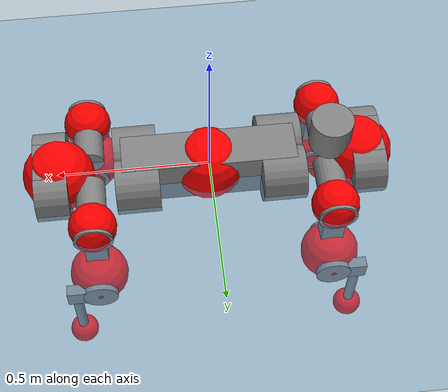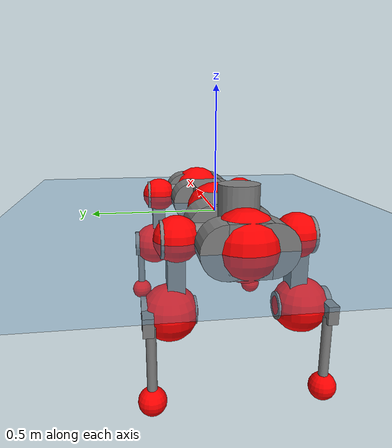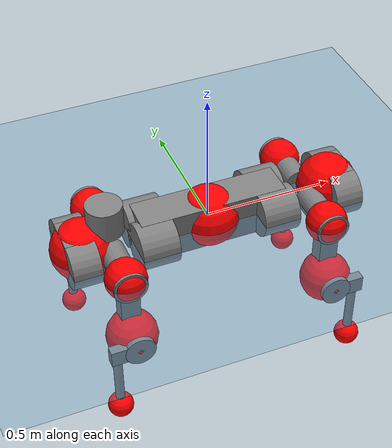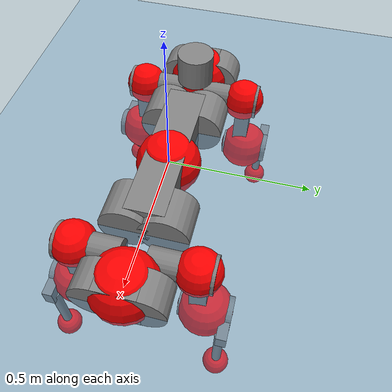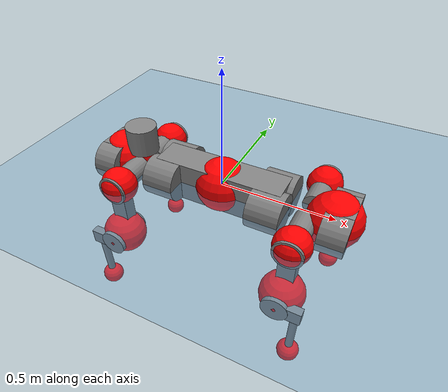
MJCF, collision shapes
<mujoco model="anymal_c">
  <compiler angle="radian" assetdir="assets" balanceinertia="true" inertiafromgeom="false"/>

  <option timestep="0.005" density="1.2" viscosity="2e-05"/>

  <size nkey="1"/>

  <visual>
    <quality shadowsize="8192"/>
    <map shadowclip="0.5"/>
  </visual>

  <default>
    <default class="/">
      <material specular="0" shininess="0.25"/>
      <geom contype="0" conaffinity="0" group="1" solref="-1000 -80"/>
      <site size="0.01 0.005 0.005" group="5"/>
      <general forcelimited="true" forcerange="-80 80" biastype="affine" gainprm="80" biasprm="0 -80 -2"/>
      <default class="anymal_c">
        <joint armature="0.01" damping="0.01" frictionloss="0.1"/>
        <default class="visual">
          <geom type="mesh" group="2"/>
          <default class="visual_zflip"/>
        </default>
        <default class="collision">
          <geom type="cylinder" group="3"/>
          <default class="foot">
            <geom size="0.03 0 0" type="sphere" condim="6" priority="1" friction="0.8 0.02 0.01" solimp="0.015 1 0.03"/>
          </default>
        </default>
      </default>
      <default class="reward_collision_sphere">
        <geom group="5" rgba="1 0 0 1"/>
      </default>
    </default>
  </default>

  <asset>
    <texture type="skybox" colorspace="auto" name="//unnamed_texture_0" builtin="gradient" rgb1="0.95 0.95 0.95" rgb2="0.95 0.95 0.95" width="100" height="600"/>
    <texture type="2d" colorspace="auto" name="texplane" builtin="checker" rgb1="0.345 0.575 0.748" rgb2="0.345 0.575 0.748" markrgb="1 1 1" width="512" height="512"/>
    <texture type="2d" colorspace="linear" name="base" file="base.png"/>
    <texture type="2d" colorspace="linear" name="top_shell" file="top_shell.png"/>
    <texture type="2d" colorspace="linear" name="bottom_shell" file="bottom_shell.png"/>
    <texture type="2d" colorspace="linear" name="remote" file="remote.png"/>
    <texture type="2d" colorspace="linear" name="hatch" file="hatch.png"/>
    <texture type="2d" colorspace="linear" name="handle" file="handle.png"/>
    <texture type="2d" colorspace="linear" name="face" file="face.png"/>
    <texture type="2d" colorspace="linear" name="battery" file="battery.png"/>
    <texture type="2d" colorspace="linear" name="lidar_cage" file="lidar_cage.png"/>
    <texture type="2d" colorspace="linear" name="depth_camera" file="depth_camera.png"/>
    <texture type="2d" colorspace="linear" name="wide_angle_camera" file="wide_angle_camera.png"/>
    <texture type="2d" colorspace="linear" name="lidar" file="lidar.png"/>
    <texture type="2d" colorspace="linear" name="drive" file="drive.png"/>
    <texture type="2d" colorspace="linear" name="hip_l" file="hip_l.png"/>
    <texture type="2d" colorspace="linear" name="shank_l" file="shank_l.png"/>
    <texture type="2d" colorspace="linear" name="foot" file="foot.png"/>
    <texture type="2d" colorspace="linear" name="thigh" file="thigh.png"/>
    <texture type="2d" colorspace="linear" name="shank_r" file="shank_r.png"/>
    <texture type="2d" colorspace="linear" name="hip_r" file="hip_r.png"/>
    <material name="MatPlane" class="/" texture="texplane" texuniform="true" texrepeat="2 2" specular="0.9" shininess="0.5"/>
    <material name="black_plastic" class="/" rgba="0.007 0.007 0.007 1"/>
    <material name="green" class="/" rgba="0.052 0.178 0.033 1"/>
    <material name="red" class="/" rgba="0.178 0.006 0.005 1"/>
    <material name="yellow" class="/" rgba="0.178 0.119 0.006 1"/>
    <material name="lwl" class="/" rgba="0.8 0.8 0.8 1"/>
    <material name="base" class="/" texture="base"/>
    <material name="top_shell" class="/" texture="top_shell"/>
    <material name="bottom_shell" class="/" texture="bottom_shell"/>
    <material name="hip_l" class="/" texture="hip_l"/>
    <material name="thigh" class="/" texture="thigh"/>
    <material name="shank_l" class="/" texture="shank_l"/>
    <material name="foot" class="/" texture="foot"/>
    <material name="hip_r" class="/" texture="hip_r"/>
    <material name="shank" class="/" texture="shank_r"/>
    <material name="hatch" class="/" texture="hatch"/>
    <material name="remote" class="/" texture="remote"/>
    <material name="handle" class="/" texture="handle"/>
    <material name="face" class="/" texture="face"/>
    <material name="depth_camera" class="/" texture="depth_camera"/>
    <material name="wide_angle_camera" class="/" texture="wide_angle_camera"/>
    <material name="battery" class="/" texture="battery"/>
    <material name="lidar_cage" class="/" texture="lidar_cage"/>
    <material name="lidar" class="/" texture="lidar"/>
    <material name="drive" class="/" texture="drive"/>
    <mesh name="base_0" class="/" file="base_0.obj"/>
    <mesh name="base_1" class="/" file="base_1.obj"/>
    <mesh name="base_2" class="/" file="base_2.obj"/>
    <mesh name="base_3" class="/" file="base_3.obj"/>
    <mesh name="base_4" class="/" file="base_4.obj"/>
    <mesh name="base_5" class="/" file="base_5.obj"/>
    <mesh name="top_shell" class="/" file="top_shell.obj"/>
    <mesh name="bottom_shell" class="/" file="bottom_shell.obj"/>
    <mesh name="remote" class="/" file="remote.obj"/>
    <mesh name="handle" class="/" file="handle.obj"/>
    <mesh name="face" class="/" file="face.obj"/>
    <mesh name="wide_angle_camera" class="/" file="wide_angle_camera.obj"/>
    <mesh name="depth_camera" class="/" file="depth_camera.obj"/>
    <mesh name="battery" class="/" file="battery.obj"/>
    <mesh name="lidar_cage" class="/" file="lidar_cage.obj"/>
    <mesh name="lidar" class="/" file="lidar.obj"/>
    <mesh name="drive" class="/" file="drive.obj"/>
    <mesh name="hip_l" class="/" file="hip_l.obj"/>
    <mesh name="thigh" class="/" file="thigh.obj"/>
    <mesh name="shank_l" class="/" file="shank_l.obj"/>
    <mesh name="foot" class="/" file="foot.obj"/>
    <mesh name="hip_r" class="/" file="hip_r.obj"/>
    <mesh name="hatch" class="/" file="hatch.obj"/>
    <mesh name="shank_r" class="/" file="shank_r.obj"/>
  </asset>

  <worldbody>
    <geom name="floor" class="/" size="100 100 0.125" type="plane" group="0" material="MatPlane"/>
    <light name="toplight_shadow" class="/" pos="0 0 5" dir="0.0990148 0.0990148 -0.990148" type="directional" ambient="0.04 0.04 0.04" diffuse="0.55 0.55 0.55" specular="0.12 0.12 0.12"/>
    <light name="toplight_fill" class="/" pos="0 0 5" dir="0.0990148 0.0990148 -0.990148" type="directional" castshadow="false" ambient="0.04 0.04 0.04" diffuse="0.3 0.3 0.3" specular="0.08 0.08 0.08"/>
    <body name="trunk" childclass="anymal_c" pos="0.0026975 -0.000297181 -0.000275215" quat="1 0.00051215 0.000144751 5.15707e-05">
      <inertial pos="0.00269598 0.000836518 0.0433175" quat="0.497975 0.499471 0.499239 0.503299" mass="17.8538" diaginertia="1.06841 0.50054 0.121719"/>
      <joint name="//unnamed_joint_0" type="free" armature="0" damping="0" frictionloss="0"/>
      <geom name="//unnamed_geom_1" class="visual" material="green" mesh="base_0"/>
      <geom name="//unnamed_geom_2" class="visual" material="yellow" mesh="base_1"/>
      <geom name="//unnamed_geom_3" class="visual" material="red" mesh="base_2"/>
      <geom name="//unnamed_geom_4" class="visual" material="black_plastic" mesh="base_3"/>
      <geom name="//unnamed_geom_5" class="visual" material="lwl" mesh="base_4"/>
      <geom name="//unnamed_geom_6" class="visual" material="base" mesh="base_5"/>
      <geom name="trunk_1" class="collision" size="0.28363 0.0684625 0.0880232" type="box"/>
      <geom name="trunk_2" class="collision" size="0.0880232 0.0709076" pos="0.238007 0.0664248 0" quat="0.707107 0 0.707107 0"/>
      <geom name="trunk_3" class="collision" size="0.0880232 0.0709076" pos="-0.238007 0.0664248 0" quat="0.707107 0 0.707107 0"/>
      <geom name="trunk_4" class="collision" size="0.0880232 0.0709076" pos="0.238007 -0.0664248 0" quat="0.707107 0 0.707107 0"/>
      <geom name="trunk_5" class="collision" size="0.0880232 0.0709076" pos="-0.238007 -0.0664248 0" quat="0.707107 0 0.707107 0"/>
      <geom name="//unnamed_geom_12" class="visual" material="top_shell" mesh="top_shell"/>
      <geom name="//unnamed_geom_13" class="visual" material="bottom_shell" mesh="bottom_shell"/>
      <geom name="//unnamed_geom_14" class="visual" material="remote" mesh="remote"/>
      <geom name="//unnamed_geom_15" class="visual" material="handle" mesh="handle"/>
      <geom name="//unnamed_geom_16" class="visual" pos="0.453582 0 0" quat="1 0 0 0" material="face" mesh="face"/>
      <geom name="trunk_6" class="collision" size="0.0537919 0.0684625 0.0880232" pos="0.513768 0 0" type="box"/>
      <geom name="//unnamed_geom_18" class="collision" size="0.0880232 0.0537919" pos="0.513768 0.0664248 0" quat="0.707107 0 0.707107 0"/>
      <geom name="//unnamed_geom_19" class="collision" size="0.0880232 0.0537919" pos="0.513768 -0.0664248 0" quat="0.707107 0 0.707107 0"/>
      <geom name="//unnamed_geom_20" class="visual" pos="0.505169 0 -0.0244683" quat="0.965926 0 0.258819 0" material="depth_camera" mesh="depth_camera"/>
      <geom name="//unnamed_geom_21" class="visual" pos="0.561369 0 0.0133367" material="wide_angle_camera" mesh="wide_angle_camera"/>
      <geom name="//unnamed_geom_22" class="visual_zflip" pos="-0.453582 0 0" quat="0 0 0 1" material="face" mesh="face"/>
      <geom name="trunk_7" class="collision" size="0.0537919 0.0684625 0.0880232" pos="-0.513768 0 0" quat="0 0 0 1" type="box"/>
      <geom name="//unnamed_geom_24" class="collision" size="0.0880232 0.0537919" pos="-0.513768 -0.0664248 0" quat="0 -0.707107 0 0.707107"/>
      <geom name="//unnamed_geom_25" class="collision" size="0.0880232 0.0537919" pos="-0.513768 0.0664248 0" quat="0 -0.707107 0 0.707107"/>
      <geom name="//unnamed_geom_26" class="visual" pos="-0.505169 0 -0.0244683" quat="0 -0.258819 0 0.965926" material="depth_camera" mesh="depth_camera"/>
      <geom name="//unnamed_geom_27" class="visual_zflip" pos="-0.561369 0 0.0133367" quat="0 0 0 1" material="wide_angle_camera" mesh="wide_angle_camera"/>
      <geom name="//unnamed_geom_28" class="visual" material="battery" mesh="battery"/>
      <geom name="//unnamed_geom_29" class="visual" pos="0 0.0706389 0.0274263" quat="0.683013 -0.183013 0.183013 0.683013" material="depth_camera" mesh="depth_camera"/>
      <geom name="//unnamed_geom_30" class="visual" pos="0 -0.0706389 0.0274263" quat="0.683013 0.183013 0.183013 -0.683013" material="depth_camera" mesh="depth_camera"/>
      <geom name="//unnamed_geom_31" class="visual" pos="-0.39832 0 0.0654807" quat="1 0 0 0" material="lidar_cage" mesh="lidar_cage"/>
      <geom name="trunk_8" class="collision" size="0.0684625 0.0586821" pos="-0.39832 0 0.118934"/>
      <geom name="//unnamed_geom_33" class="visual" pos="-0.39832 -5.71087e-05 0.126685" quat="0.707107 0 0 -0.707107" material="lidar" mesh="lidar"/>
      <geom name="//unnamed_geom_34" class="visual" pos="0.328177 0.0986676 1.00103e-09" quat="0.258819 0.965926 0 0" material="drive" mesh="drive"/>
      <geom name="//unnamed_geom_35" class="visual" pos="0.328177 -0.0986676 -1.00103e-09" quat="0.258819 -0.965926 0 0" material="drive" mesh="drive"/>
      <geom name="//unnamed_geom_36" class="visual" pos="-0.328177 0.0986676 -1.00103e-09" quat="0 0 0.965926 -0.258819" material="drive" mesh="drive"/>
      <geom name="//unnamed_geom_37" class="visual" pos="-0.328177 -0.0986676 1.00103e-09" quat="0 0 -0.965926 -0.258819" material="drive" mesh="drive"/>
      <geom name="//unnamed_geom_38" class="visual" pos="0.126937 0 0.0650353" quat="1 0 0 0" material="hatch" mesh="hatch"/>
      <geom name="//unnamed_geom_39" class="reward_collision_sphere" size="0.117364"/>
      <geom name="//unnamed_geom_40" class="reward_collision_sphere" size="0.117364" pos="0.492429 0 0"/>
      <geom name="//unnamed_geom_41" class="reward_collision_sphere" size="0.117364" pos="-0.492429 0 0"/>
      <site name="imu" pos="0.267261 0.010857 0.0276748" size="0.00978035"/>
      <camera name="track" pos="0 -1.89785 0" quat="0.707107 0.707107 0 0" mode="trackcom"/>
      <camera name="ego_camera" pos="0.492429 0 -0.0356358" quat="-0.5 -0.5 0.5 0.5"/>
      <body name="LF_HIP" pos="0.327671 0.0992402 -0.00104103" quat="0.257658 0.966236 0.000204923 0.000201792">
        <inertial pos="0.0593247 -0.0139255 -0.0071646" quat="-0.126761 0.710666 -0.135299 0.67866" mass="2.61765" diaginertia="0.0092452 0.00366136 0.00184314"/>
        <joint name="LF_HAA" pos="0 0 0" axis="0.999904 -0.0135115 0.00319985" range="-0.722095 0.488323" armature="0.00846486" damping="0.00479714" frictionloss="0.100103"/>
        <geom name="//unnamed_geom_42" class="visual" pos="0 5.88864e-05 -9.67204e-06" quat="0.258819 -0.965926 0 0" material="hip_l" mesh="hip_l"/>
        <geom name="//unnamed_geom_43" class="visual" pos="0.0655478 -0.0774906 -0.04431" quat="0.183013 -0.683013 0.683013 0.183013" material="drive" mesh="drive"/>
        <geom name="//unnamed_geom_44" class="collision" size="0.0489018 0.0684625" pos="0.0655478 -0.011349 -0.00615163" quat="-0.353553 -0.612372 0.612372 -0.353553"/>
        <body name="LF_THIGH" pos="0.064632 -0.0686432 -0.038489" quat="0.182996 -0.683013 0.683006 0.183054">
          <inertial pos="0.0334503 0.000203187 -0.221448" quat="0.993248 -0.0036576 -0.0801129 0.0838238" mass="2.91404" diaginertia="0.048134 0.0231682 0.00235231"/>
          <joint name="LF_HFE" pos="0 0 0" axis="0.999987 -0.00454847 -0.00228426" range="-3.14926 3.13595" armature="0.0111255" damping="0.00320374" frictionloss="0.0923699"/>
          <geom name="//unnamed_geom_45" class="visual" pos="0.00289212 4.55731e-06 0" quat="0.707107 0 0 -0.707107" material="thigh" mesh="thigh"/>
          <geom name="//unnamed_geom_46" class="collision" size="0.0635723 0.0391214" pos="0.0437715 0 0" quat="0.5 0.5 -0.5 -0.5"/>
          <geom name="//unnamed_geom_47" class="collision" size="0.0366763 0.0293411 0.13821" pos="0.0328286 0 -0.125896" quat="0.707107 0 0 -0.707107" type="box"/>
          <geom name="//unnamed_geom_48" class="visual" pos="0.109757 0 -0.253905" quat="1 0 0 0" material="drive" mesh="drive"/>
          <geom name="//unnamed_geom_49" class="collision" size="0.0489018 0.0684625" pos="0.0331569 0 -0.253905" quat="0.707107 0 0.707107 0"/>
          <geom name="//unnamed_geom_50" class="reward_collision_sphere" size="0.0782428" pos="0.0273572 0 0"/>
          <body name="LF_SHANK" pos="0.109771 -0.00296821 -0.253146" quat="1 5.01359e-05 0.000771487 -0.000517173">
            <inertial pos="0.00639222 -0.0570455 -0.0718319" quat="0.991282 -0.128933 -0.00466625 -0.0267312" mass="0.569032" diaginertia="0.0157578 0.00719566 0.000618059"/>
            <joint name="LF_KFE" pos="0 0 0" axis="0.999994 -0.00181516 0.00288699" range="-3.14338 3.15614" armature="0.00982523" damping="0" frictionloss="0.0975443"/>
            <geom name="//unnamed_geom_51" class="visual" pos="0.000943058 0.00502844 0" quat="0.707107 0 0 -0.707107" material="shank_l" mesh="shank_l"/>
            <geom name="LF_kfe_act" class="collision" size="0.0586821 0.0195607" pos="0.0218857 0 0" quat="0.5 0.5 -0.5 -0.5"/>
            <geom name="//unnamed_geom_53" class="collision" size="0.0562361 0.0330087 0.0185827" pos="0.0218857 -0.0545622 0" quat="0.5 0.5 -0.5 -0.5" type="box"/>
            <geom name="//unnamed_geom_54" class="visual" pos="0.0142802 -0.0818375 -0.301096" quat="0.382683 0 0 -0.92388" material="foot" mesh="foot"/>
            <geom name="LF_calf" class="collision" size="0.0171156 0.138149" pos="0.0142804 -0.083458 -0.150548" quat="0.707107 0 0 -0.707107"/>
            <geom name="LF_foot" class="foot" size="0.0314782" pos="0.0142804 -0.083458 -0.28105" quat="0.707107 0 0 -0.707107"/>
            <geom name="//unnamed_geom_57" class="reward_collision_sphere" size="0.0978035" pos="-0.0547143 0 0"/>
            <geom name="//unnamed_geom_58" class="reward_collision_sphere" size="0.0489018" pos="0.0142804 -0.083458 -0.28105"/>
            <site name="LF_foot" class="foot" pos="0.0142804 -0.083458 -0.28105" quat="0.707107 0 0 -0.707107" size="0.00978035"/>
          </body>
        </body>
      </body>
      <body name="RF_HIP" pos="0.325882 -0.0967166 -0.00154973" quat="0.258948 -0.965891 0.000372929 -0.000295598">
        <inertial pos="0.064812 0.0140298 -0.0101764" quat="0.139515 0.675864 0.124477 0.712916" mass="2.66793" diaginertia="0.00945471 0.00383154 0.001913"/>
        <joint name="RF_HAA" pos="0 0 0" axis="0.999885 -0.0111211 -0.0103196" range="-0.547864 0.711939" armature="0.00957763" damping="0.00759038" frictionloss="0.0853124"/>
        <geom name="//unnamed_geom_59" class="visual" pos="0 -5.88859e-05 -9.67201e-06" quat="0.258819 0.965926 0 0" material="hip_r" mesh="hip_r"/>
        <geom name="//unnamed_geom_60" class="visual" pos="0.0655478 0.0774906 -0.04431" quat="0.183013 0.683013 0.683013 -0.183013" material="drive" mesh="drive"/>
        <geom name="//unnamed_geom_61" class="collision" size="0.0489018 0.0684625" pos="0.0655478 0.011349 -0.00615163" quat="-0.353553 0.612372 0.612372 0.353553"/>
        <body name="RF_THIGH" pos="0.0656083 0.0689982 -0.0368114" quat="0.182977 0.683003 0.683012 -0.183085">
          <inertial pos="0.0331958 0.00239944 -0.219523" quat="0.99281 -0.00426377 -0.0805442 0.0884475" mass="2.84996" diaginertia="0.0476676 0.0225617 0.00232808"/>
          <joint name="RF_HFE" pos="0 0 0" axis="0.999998 0.000307708 0.00187061" stiffness="0.00262463" range="-3.1323 3.15157" armature="0.0103044" damping="0" frictionloss="0.0930066"/>
          <geom name="//unnamed_geom_62" class="visual" pos="0.00289212 4.55731e-06 0" quat="0.707107 0 0 -0.707107" material="thigh" mesh="thigh"/>
          <geom name="//unnamed_geom_63" class="collision" size="0.0635723 0.0391214" pos="0.0437715 0 0" quat="0.5 0.5 0.5 0.5"/>
          <geom name="//unnamed_geom_64" class="collision" size="0.0366763 0.0293411 0.13821" pos="0.0328286 0 -0.125896" quat="0.707107 0 0 0.707107" type="box"/>
          <geom name="//unnamed_geom_65" class="visual" pos="0.109757 0 -0.253905" quat="1 0 0 0" material="drive" mesh="drive"/>
          <geom name="//unnamed_geom_66" class="collision" size="0.0489018 0.0684625" pos="0.0331569 0 -0.253905" quat="0.707107 0 0.707107 0"/>
          <geom name="//unnamed_geom_67" class="reward_collision_sphere" size="0.0782428" pos="0.0273572 0 0"/>
          <body name="RF_SHANK" pos="0.110443 -0.000771801 -0.250749" quat="0.999999 -0.000886124 0.000331494 0.000962428">
            <inertial pos="0.00856523 0.0564962 -0.0690915" quat="0.993335 0.112824 -0.00379525 0.0232897" mass="0.537745" diaginertia="0.0162271 0.00740854 0.000655119"/>
            <joint name="RF_KFE" pos="0 0 0" axis="0.99999 -0.00390621 0.00220501" stiffness="0.00349173" range="-3.19065 3.13045" armature="0.00945989" damping="0.0212799" frictionloss="0.110866"/>
            <geom name="//unnamed_geom_68" class="visual" pos="0.000943053 -0.00502843 0" quat="0.707107 0 0 0.707107" material="shank" mesh="shank_r"/>
            <geom name="RF_kfe_act" class="collision" size="0.0586821 0.0195607" pos="0.0218857 0 0" quat="0.5 0.5 0.5 0.5"/>
            <geom name="//unnamed_geom_70" class="collision" size="0.0562361 0.0330087 0.0185827" pos="0.0218857 0.0545622 0" quat="0.5 0.5 0.5 0.5" type="box"/>
            <geom name="//unnamed_geom_71" class="visual" pos="0.0142807 0.0818375 -0.301096" quat="0.382683 0 0 0.92388" material="foot" mesh="foot"/>
            <geom name="RF_calf" class="collision" size="0.0171156 0.138149" pos="0.0142804 0.083458 -0.150548" quat="0.707107 0 0 0.707107"/>
            <geom name="RF_foot" class="foot" size="0.0300207" pos="0.0142804 0.083458 -0.28105" quat="0.707107 0 0 0.707107"/>
            <geom name="//unnamed_geom_74" class="reward_collision_sphere" size="0.0978035" pos="-0.0547143 0 0"/>
            <geom name="//unnamed_geom_75" class="reward_collision_sphere" size="0.0489018" pos="0.0142804 0.083458 -0.28105"/>
            <site name="RF_foot" class="foot" pos="0.0142804 0.083458 -0.28105" quat="0.707107 0 0 0.707107" size="0.00978035"/>
          </body>
        </body>
      </body>
      <body name="LH_HIP" pos="-0.325314 0.0964053 0.000950284" quat="0.000156274 0.000121369 0.965783 -0.25935">
        <inertial pos="0.0648782 0.0118225 -0.00783462" quat="0.128751 0.671896 0.13378 0.716995" mass="2.59701" diaginertia="0.00934918 0.00380952 0.00179374"/>
        <joint name="LH_HAA" pos="0 0 0" axis="0.999993 -0.00133746 -0.00350048" range="-0.457665 0.718509" armature="0.00976209" damping="0.0105594" frictionloss="0.100924"/>
        <geom name="//unnamed_geom_76" class="visual" pos="0 -5.88859e-05 -9.67201e-06" quat="-0.258819 -0.965926 0 0" material="hip_r" mesh="hip_r"/>
        <geom name="//unnamed_geom_77" class="visual" pos="0.0655478 0.0774906 -0.04431" quat="0.183013 0.683013 0.683013 -0.183013" material="drive" mesh="drive"/>
        <geom name="//unnamed_geom_78" class="collision" size="0.0489018 0.0684625" pos="0.0655478 0.011349 -0.00615163" quat="-0.353553 0.612372 0.612372 0.353553"/>
        <body name="LH_THIGH" pos="0.0656226 0.0690307 -0.0372967" quat="0.18302 0.683013 0.683005 -0.183032">
          <inertial pos="0.0327539 0.00261684 -0.21829" quat="0.992388 -0.0161881 -0.0839295 0.0886584" mass="2.90685" diaginertia="0.0475747 0.0237066 0.0023297"/>
          <joint name="LH_HFE" pos="0 0 0" axis="0.999916 0.0128521 0.00190446" range="-3.105 3.17022" armature="0.0111444" damping="0.00613545" frictionloss="0.110413"/>
          <geom name="//unnamed_geom_79" class="visual" pos="0.00289212 4.55731e-06 0" quat="0.707107 0 0 -0.707107" material="thigh" mesh="thigh"/>
          <geom name="//unnamed_geom_80" class="collision" size="0.0635723 0.0391214" pos="0.0437715 0 0" quat="0.5 0.5 -0.5 -0.5"/>
          <geom name="//unnamed_geom_81" class="collision" size="0.0366763 0.0293411 0.13821" pos="0.0328286 0 -0.125896" quat="0.707107 0 0 -0.707107" type="box"/>
          <geom name="//unnamed_geom_82" class="visual" pos="0.109757 0 -0.253905" quat="1 0 0 0" material="drive" mesh="drive"/>
          <geom name="//unnamed_geom_83" class="collision" size="0.0489018 0.0684625" pos="0.0331569 0 -0.253905" quat="0.707107 0 0.707107 0"/>
          <geom name="//unnamed_geom_84" class="reward_collision_sphere" size="0.0782428" pos="0.0273572 0 0"/>
          <body name="LH_SHANK" pos="0.108657 0.00176707 -0.25683" quat="0.999999 -0.000491712 0.000480672 -0.00122316">
            <inertial pos="0.00586093 0.0580399 -0.0693698" quat="0.993369 0.111724 -0.00102576 0.0271107" mass="0.529879" diaginertia="0.0157989 0.00706511 0.000629796"/>
            <joint name="LH_KFE" pos="0 0 0" axis="0.999993 -0.00363508 0.000603434" range="-3.16357 3.10879" armature="0.00923268" damping="0.00901637" frictionloss="0.0863313"/>
            <geom name="//unnamed_geom_85" class="visual" pos="0.000943053 -0.00502843 0" quat="-0.707107 0 0 -0.707107" material="shank" mesh="shank_r"/>
            <geom name="LH_kfe_act" class="collision" size="0.0586821 0.0195607" pos="0.0218857 0 0" quat="0.5 0.5 -0.5 -0.5"/>
            <geom name="//unnamed_geom_87" class="collision" size="0.0562361 0.0330087 0.0185827" pos="0.0218857 0.0545622 0" quat="0.5 0.5 -0.5 -0.5" type="box"/>
            <geom name="//unnamed_geom_88" class="visual" pos="0.0142807 0.0818375 -0.301096" quat="-0.382683 0 0 -0.92388" material="foot" mesh="foot"/>
            <geom name="LH_calf" class="collision" size="0.0171156 0.138149" pos="0.0142804 0.083458 -0.150548" quat="0.707107 0 0 -0.707107"/>
            <geom name="LH_foot" class="foot" size="0.0274982" pos="0.0142804 0.083458 -0.28105" quat="0.707107 0 0 -0.707107"/>
            <geom name="//unnamed_geom_91" class="reward_collision_sphere" size="0.0978035" pos="-0.0547143 0 0"/>
            <geom name="//unnamed_geom_92" class="reward_collision_sphere" size="0.0489018" pos="0.0142804 0.083458 -0.28105"/>
            <site name="LH_foot" class="foot" pos="0.0142804 0.083458 -0.28105" quat="0.707107 0 0 -0.707107" size="0.00978035"/>
          </body>
        </body>
      </body>
      <body name="RH_HIP" pos="-0.330752 -0.0992669 0.000556886" quat="8.40175e-05 -0.000272589 -0.965908 -0.258884">
        <inertial pos="0.064116 -0.0138768 -0.00780699" quat="-0.131787 0.701556 -0.143374 0.685489" mass="2.62759" diaginertia="0.00943185 0.00390907 0.0019031"/>
        <joint name="RH_HAA" pos="0 0 0" axis="0.999899 -0.00382438 -0.0136875" range="-0.719061 0.479304" armature="0.00998084" damping="0.0132025" frictionloss="0.0996806"/>
        <geom name="//unnamed_geom_93" class="visual" pos="0 5.88864e-05 -9.67204e-06" quat="-0.258819 0.965926 0 0" material="hip_l" mesh="hip_l"/>
        <geom name="//unnamed_geom_94" class="visual" pos="0.0655478 -0.0774906 -0.04431" quat="-0.183013 0.683013 -0.683013 -0.183013" material="drive" mesh="drive"/>
        <geom name="//unnamed_geom_95" class="collision" size="0.0489018 0.0684625" pos="0.0655478 -0.011349 -0.00615163" quat="0.353553 0.612372 -0.612372 0.353553"/>
        <body name="RH_THIGH" pos="0.0645123 -0.0683799 -0.0348494" quat="-0.183103 0.68296 -0.682984 -0.183226">
          <inertial pos="0.0329129 -0.000138074 -0.219477" quat="0.992014 -0.00198413 -0.0809745 0.0966781" mass="2.91103" diaginertia="0.0471391 0.0237286 0.00242369"/>
          <joint name="RH_HFE" pos="0 0 0" axis="0.99999 -0.00389878 0.00235079" range="-3.13687 3.1368" armature="0.0109063" damping="0" frictionloss="0.0950827"/>
          <geom name="//unnamed_geom_96" class="visual" pos="0.00289212 4.55731e-06 0" quat="0.707107 0 0 -0.707107" material="thigh" mesh="thigh"/>
          <geom name="//unnamed_geom_97" class="collision" size="0.0635723 0.0391214" pos="0.0437715 0 0" quat="0.5 0.5 0.5 0.5"/>
          <geom name="//unnamed_geom_98" class="collision" size="0.0366763 0.0293411 0.13821" pos="0.0328286 0 -0.125896" quat="0.707107 0 0 0.707107" type="box"/>
          <geom name="//unnamed_geom_99" class="visual" pos="0.109757 0 -0.253905" quat="1 0 0 0" material="drive" mesh="drive"/>
          <geom name="//unnamed_geom_100" class="collision" size="0.0489018 0.0684625" pos="0.0331569 0 -0.253905" quat="0.707107 0 0.707107 0"/>
          <geom name="//unnamed_geom_101" class="reward_collision_sphere" size="0.0782428" pos="0.0273572 0 0"/>
          <body name="RH_SHANK" pos="0.109994 -4.02161e-05 -0.253595" quat="1 0.000128285 -0.000223328 -0.000258098">
            <inertial pos="0.00338738 -0.0606983 -0.0691838" quat="0.993043 -0.115331 2.79488e-06 -0.0237522" mass="0.56876" diaginertia="0.0156119 0.00734915 0.00062842"/>
            <joint name="RH_KFE" pos="0 0 0" axis="0.999987 0.00329151 -0.00400078" range="-3.11036 3.19044" armature="0.00988497" damping="0.00395312" frictionloss="0.111117"/>
            <geom name="//unnamed_geom_102" class="visual" pos="0.000943058 0.00502844 0" quat="0.707107 0 0 -0.707107" material="shank_l" mesh="shank_l"/>
            <geom name="RH_kfe_act" class="collision" size="0.0586821 0.0195607" pos="0.0218857 0 0" quat="0.5 0.5 0.5 0.5"/>
            <geom name="//unnamed_geom_104" class="collision" size="0.0562361 0.0330087 0.0185827" pos="0.0218857 -0.0545622 0" quat="0.5 0.5 0.5 0.5" type="box"/>
            <geom name="//unnamed_geom_105" class="visual" pos="0.0142802 -0.0818375 -0.301096" quat="0.382683 0 0 -0.92388" material="foot" mesh="foot"/>
            <geom name="RH_calf" class="collision" size="0.0171156 0.138149" pos="0.0142804 -0.083458 -0.150548" quat="0.707107 0 0 0.707107"/>
            <geom name="RH_foot" class="foot" size="0.0302179" pos="0.0142804 -0.083458 -0.28105" quat="0.707107 0 0 0.707107"/>
            <geom name="//unnamed_geom_108" class="reward_collision_sphere" size="0.0978035" pos="-0.0547143 0 0"/>
            <geom name="//unnamed_geom_109" class="reward_collision_sphere" size="0.0489018" pos="0.0142804 -0.083458 -0.28105"/>
            <site name="RH_foot" class="foot" pos="0.0142804 -0.083458 -0.28105" quat="0.707107 0 0 0.707107" size="0.00978035"/>
          </body>
        </body>
      </body>
    </body>
  </worldbody>

  <contact>
    <pair class="/" geom1="floor" geom2="LF_foot" name="//unnamed_contact_0"/>
    <pair class="/" geom1="floor" geom2="RF_foot" name="//unnamed_contact_1"/>
    <pair class="/" geom1="floor" geom2="LH_foot" name="//unnamed_contact_2"/>
    <pair class="/" geom1="floor" geom2="RH_foot" name="//unnamed_contact_3"/>
  </contact>

  <actuator>
    <general name="LF_HAA" class="/" joint="LF_HAA" forcerange="-79.6678 79.6678" gainprm="78.7712" biasprm="0 -78.7712 -1.96955"/>
    <general name="LF_HFE" class="/" joint="LF_HFE" forcerange="-70.909 70.909" gainprm="78.7712" biasprm="0 -78.7712 -1.96955"/>
    <general name="LF_KFE" class="/" joint="LF_KFE" forcerange="-79.1171 79.1171" gainprm="78.7712" biasprm="0 -78.7712 -1.96955"/>
    <general name="RF_HAA" class="/" joint="RF_HAA" forcerange="-77.9282 77.9282" gainprm="78.7712" biasprm="0 -78.7712 -1.96955"/>
    <general name="RF_HFE" class="/" joint="RF_HFE" forcerange="-76.3997 76.3997" gainprm="78.7712" biasprm="0 -78.7712 -1.96955"/>
    <general name="RF_KFE" class="/" joint="RF_KFE" forcerange="-82.4951 82.4951" gainprm="78.7712" biasprm="0 -78.7712 -1.96955"/>
    <general name="LH_HAA" class="/" joint="LH_HAA" forcerange="-79.1679 79.1679" gainprm="78.7712" biasprm="0 -78.7712 -1.96955"/>
    <general name="LH_HFE" class="/" joint="LH_HFE" forcerange="-83.4789 83.4789" gainprm="78.7712" biasprm="0 -78.7712 -1.96955"/>
    <general name="LH_KFE" class="/" joint="LH_KFE" forcerange="-77.0495 77.0495" gainprm="78.7712" biasprm="0 -78.7712 -1.96955"/>
    <general name="RH_HAA" class="/" joint="RH_HAA" forcerange="-77.3443 77.3443" gainprm="78.7712" biasprm="0 -78.7712 -1.96955"/>
    <general name="RH_HFE" class="/" joint="RH_HFE" forcerange="-76.4481 76.4481" gainprm="78.7712" biasprm="0 -78.7712 -1.96955"/>
    <general name="RH_KFE" class="/" joint="RH_KFE" forcerange="-70.7101 70.7101" gainprm="78.7712" biasprm="0 -78.7712 -1.96955"/>
  </actuator>

  <sensor>
    <gyro site="imu" name="imu_angular_velocity"/>
    <velocimeter site="imu" name="imu_linear_velocity"/>
    <framelinvel objtype="site" objname="LF_foot" name="LF_foot_global_linear_velocity"/>
    <framelinvel objtype="site" objname="RF_foot" name="RF_foot_global_linear_velocity"/>
    <framelinvel objtype="site" objname="LH_foot" name="LH_foot_global_linear_velocity"/>
    <framelinvel objtype="site" objname="RH_foot" name="RH_foot_global_linear_velocity"/>
  </sensor>

  <keyframe>
    <key name="home" qpos="0 0 0.55 1 0 0 0 0 0.4 -0.8 0 -0.4 0.8 0 -0.4 0.8 0 0.4 -0.8"/>
  </keyframe>
</mujoco>
